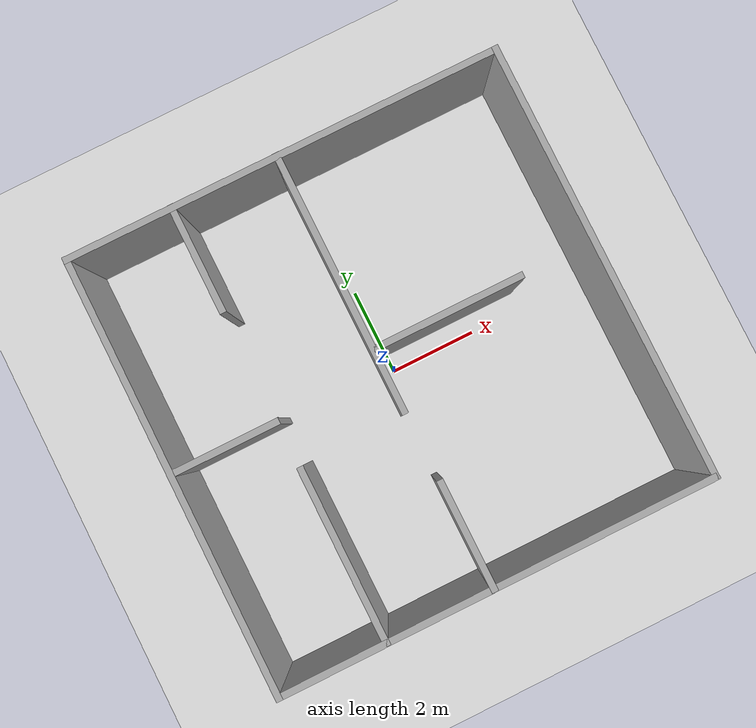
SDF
<?xml version='1.0'?>
<sdf version='1.7'>
  <world name='room'>

    <plugin
      filename="gz-sim-physics-system"
      name="gz::sim::systems::Physics">
    </plugin>

    <plugin
      filename="gz-sim-user-commands-system"
      name="gz::sim::systems::UserCommands">
    </plugin>

    <plugin
      filename="gz-sim-scene-broadcaster-system"
      name="gz::sim::systems::SceneBroadcaster">
    </plugin>

    <light name='sun' type='directional'>
      <cast_shadows>0</cast_shadows>
      <pose>0 0 10 0 -0 0</pose>
      <diffuse>0.7 0.7 0.7 1</diffuse>
      <specular>0.05 0.05 0.05 1</specular>
      <attenuation>
        <range>1000</range>
        <constant>0.9</constant>
        <linear>0.01</linear>
        <quadratic>0.001</quadratic>
      </attenuation>
      <direction>-0.5 0.1 -0.9</direction>
    </light>

    <physics type='ode'>
      <max_step_size>0.001</max_step_size>
      <real_time_factor>1</real_time_factor>
      <real_time_update_rate>1000</real_time_update_rate>
    </physics>

    <scene>
      <ambient>0.35 0.35 0.35 1</ambient>
      <background>0.55 0.55 0.55 1</background>
      <shadows>0</shadows>
      <grid>false</grid>
    </scene>

    <model name='ground_plane'>
      <static>1</static>
      <link name='link'>
        <collision name='collision'>
          <geometry>
            <plane>
              <normal>0 0 1</normal>
              <size>20 20</size>
            </plane>
          </geometry>
          <surface>
            <friction>
              <ode>
                <mu>100</mu>
                <mu2>50</mu2>
              </ode>
            </friction>
          </surface>
        </collision>
        <visual name='visual'>
          <cast_shadows>0</cast_shadows>
          <geometry>
            <plane>
              <normal>0 0 1</normal>
              <size>20 20</size>
            </plane>
          </geometry>
          <material>
            <ambient>0.85 0.85 0.85 1</ambient>
            <diffuse>0.85 0.85 0.85 1</diffuse>
            <specular>0.05 0.05 0.05 1</specular>
          </material>
        </visual>
      </link>
    </model>

    <model name='room_with_walls_10x10'>
      <pose frame=''>-0 0 0 0 -0 0</pose>
      <static>1</static>

      <link name='Wall_1'>
        <collision name='Wall_1_Collision'>
          <geometry>
            <box>
              <size>10 0.15 2.5</size>
            </box>
          </geometry>
          <pose frame=''>0 0 1.25 0 -0 0</pose>
        </collision>
        <visual name='Wall_1_Visual'>
          <pose frame=''>0 0 1.25 0 -0 0</pose>
          <geometry>
            <box>
              <size>10 0.15 2.5</size>
            </box>
          </geometry>
          <material>
            <ambient>0.45 0.45 0.45 1</ambient>
            <diffuse>0.65 0.65 0.65 1</diffuse>
            <specular>0.02 0.02 0.02 1</specular>
          </material>
        </visual>
        <pose frame=''>-0.119159 -4.92736 0 0 -0 0</pose>
      </link>

      <link name='Wall_2'>
        <collision name='Wall_2_Collision'>
          <geometry>
            <box>
              <size>10 0.15 2.5</size>
            </box>
          </geometry>
          <pose frame=''>0 0 1.25 0 -0 0</pose>
        </collision>
        <visual name='Wall_2_Visual'>
          <pose frame=''>0 0 1.25 0 -0 0</pose>
          <geometry>
            <box>
              <size>10 0.15 2.5</size>
            </box>
          </geometry>
          <material>
            <ambient>0.45 0.45 0.45 1</ambient>
            <diffuse>0.65 0.65 0.65 1</diffuse>
            <specular>0.02 0.02 0.02 1</specular>
          </material>
        </visual>
        <pose frame=''>4.80584 -0.002362 0 0 -0 1.5708</pose>
      </link>

      <link name='Wall_3'>
        <collision name='Wall_3_Collision'>
          <geometry>
            <box>
              <size>10 0.15 2.5</size>
            </box>
          </geometry>
          <pose frame=''>0 0 1.25 0 -0 0</pose>
        </collision>
        <visual name='Wall_3_Visual'>
          <pose frame=''>0 0 1.25 0 -0 0</pose>
          <geometry>
            <box>
              <size>10 0.15 2.5</size>
            </box>
          </geometry>
          <material>
            <ambient>0.45 0.45 0.45 1</ambient>
            <diffuse>0.65 0.65 0.65 1</diffuse>
            <specular>0.02 0.02 0.02 1</specular>
          </material>
        </visual>
        <pose frame=''>-0.119159 4.92264 0 0 -0 3.14159</pose>
      </link>

      <link name='Wall_4'>
        <collision name='Wall_4_Collision'>
          <geometry>
            <box>
              <size>10 0.15 2.5</size>
            </box>
          </geometry>
          <pose frame=''>0 0 1.25 0 -0 0</pose>
        </collision>
        <visual name='Wall_4_Visual'>
          <pose frame=''>0 0 1.25 0 -0 0</pose>
          <geometry>
            <box>
              <size>10 0.15 2.5</size>
            </box>
          </geometry>
          <material>
            <ambient>0.45 0.45 0.45 1</ambient>
            <diffuse>0.65 0.65 0.65 1</diffuse>
            <specular>0.02 0.02 0.02 1</specular>
          </material>
        </visual>
        <pose frame=''>-5.04416 -0.002362 0 0 -0 -1.5708</pose>
      </link>

      <link name='Wall_11'>
        <collision name='Wall_11_Collision'>
          <geometry>
            <box>
              <size>2.5 0.15 2.5</size>
            </box>
          </geometry>
          <pose frame=''>0 0 1.25 0 -0 0</pose>
        </collision>
        <visual name='Wall_11_Visual'>
          <pose frame=''>0 0 1.25 0 -0 0</pose>
          <geometry>
            <box>
              <size>2.5 0.15 2.5</size>
            </box>
          </geometry>
          <material>
            <ambient>0.45 0.45 0.45 1</ambient>
            <diffuse>0.65 0.65 0.65 1</diffuse>
            <specular>0.02 0.02 0.02 1</specular>
          </material>
        </visual>
        <pose frame=''>-2.64666 3.75236 0 0 -0 -1.5708</pose>
      </link>

      <link name='Wall_16'>
        <collision name='Wall_16_Collision'>
          <geometry>
            <box>
              <size>2.5 0.15 2.5</size>
            </box>
          </geometry>
          <pose frame=''>0 0 1.25 0 -0 0</pose>
        </collision>
        <visual name='Wall_16_Visual'>
          <pose frame=''>0 0 1.25 0 -0 0</pose>
          <geometry>
            <box>
              <size>2.5 0.15 2.5</size>
            </box>
          </geometry>
          <material>
            <ambient>0.45 0.45 0.45 1</ambient>
            <diffuse>0.65 0.65 0.65 1</diffuse>
            <specular>0.02 0.02 0.02 1</specular>
          </material>
        </visual>
        <pose frame=''>-3.84066 0.028362 0 0 -0 0</pose>
      </link>

      <link name='Wall_18'>
        <collision name='Wall_18_Collision'>
          <geometry>
            <box>
              <size>4 0.15 2.5</size>
            </box>
          </geometry>
          <pose frame=''>0 0 1.25 0 -0 0</pose>
        </collision>
        <visual name='Wall_18_Visual'>
          <pose frame=''>0 0 1.25 0 -0 0</pose>
          <geometry>
            <box>
              <size>4 0.15 2.5</size>
            </box>
          </geometry>
          <material>
            <ambient>0.45 0.45 0.45 1</ambient>
            <diffuse>0.65 0.65 0.65 1</diffuse>
            <specular>0.02 0.02 0.02 1</specular>
          </material>
        </visual>
        <pose frame=''>-2.63516 -2.99164 0 0 -0 1.5708</pose>
      </link>

      <link name='Wall_24'>
        <collision name='Wall_24_Collision'>
          <geometry>
            <box>
              <size>6 0.15 2.5</size>
            </box>
          </geometry>
          <pose frame=''>0 0 1.25 0 -0 0</pose>
        </collision>
        <visual name='Wall_24_Visual'>
          <pose frame=''>0 0 1.25 0 -0 0</pose>
          <geometry>
            <box>
              <size>6 0.15 2.5</size>
            </box>
          </geometry>
          <material>
            <ambient>0.45 0.45 0.45 1</ambient>
            <diffuse>0.65 0.65 0.65 1</diffuse>
            <specular>0.02 0.02 0.02 1</specular>
          </material>
        </visual>
        <pose frame=''>-0.243157 2.00236 0 0 -0 -1.5708</pose>
      </link>

      <link name='Wall_28'>
        <collision name='Wall_28_Collision'>
          <geometry>
            <box>
              <size>2.5 0.15 2.5</size>
            </box>
          </geometry>
          <pose frame=''>0 0 1.25 0 -0 0</pose>
        </collision>
        <visual name='Wall_28_Visual'>
          <pose frame=''>0 0 1.25 0 -0 0</pose>
          <geometry>
            <box>
              <size>2.5 0.15 2.5</size>
            </box>
          </geometry>
          <material>
            <ambient>0.45 0.45 0.45 1</ambient>
            <diffuse>0.65 0.65 0.65 1</diffuse>
            <specular>0.02 0.02 0.02 1</specular>
          </material>
        </visual>
        <pose frame=''>-0.220157 -3.74164 0 0 -0 1.5708</pose>
      </link>

      <link name='Wall_36'>
        <collision name='Wall_36_Collision'>
          <geometry>
            <box>
              <size>3.5 0.15 2.5</size>
            </box>
          </geometry>
          <pose frame=''>0 0 1.25 0 -0 0</pose>
        </collision>
        <visual name='Wall_36_Visual'>
          <pose frame=''>0 0 1.25 0 -0 0</pose>
          <geometry>
            <box>
              <size>3.5 0.15 2.5</size>
            </box>
          </geometry>
          <material>
            <ambient>0.45 0.45 0.45 1</ambient>
            <diffuse>0.65 0.65 0.65 1</diffuse>
            <specular>0.02 0.02 0.02 1</specular>
          </material>
        </visual>
        <pose frame=''>1.44334 0.476862 0 0 -0 0</pose>
      </link>

    </model>
  </world>
</sdf>
